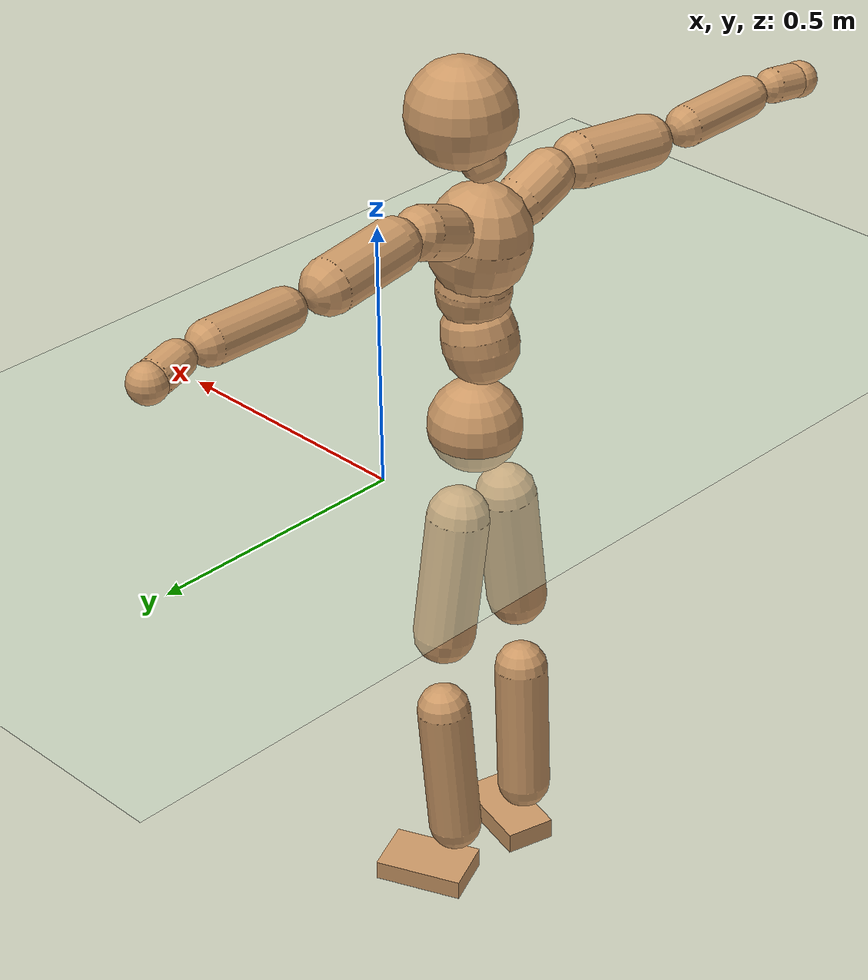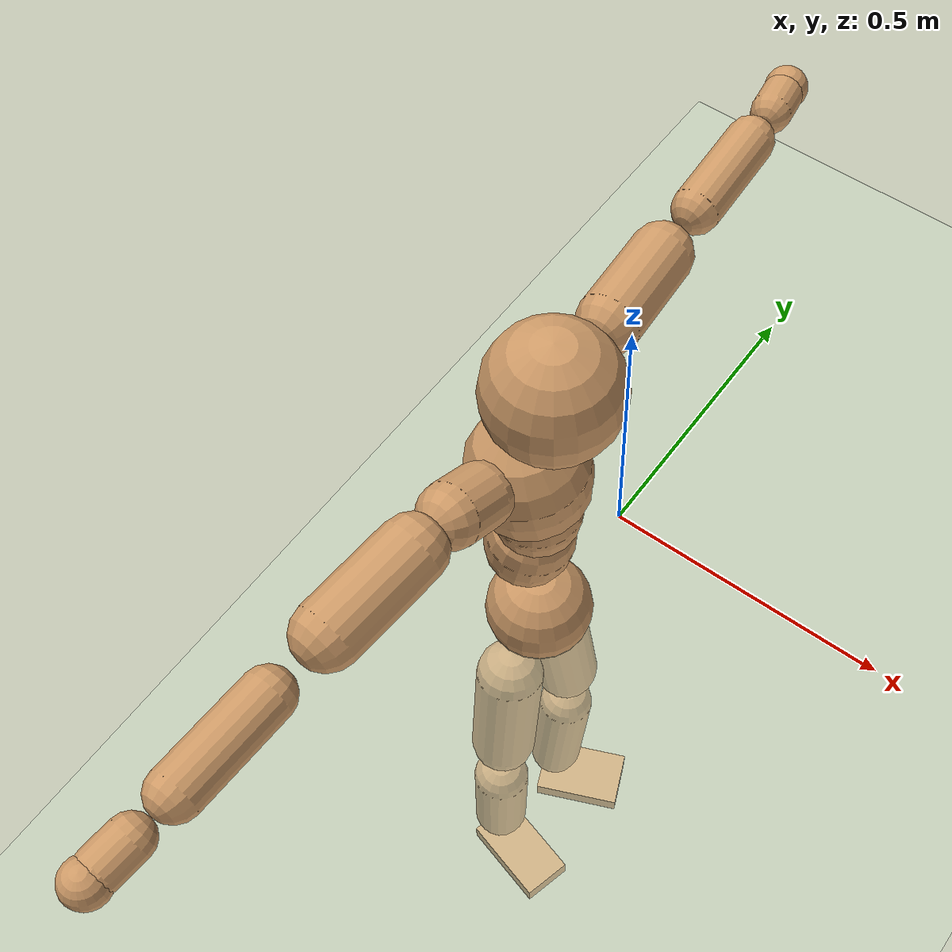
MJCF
<mujoco model="humanoid">
  <compiler coordinate="local"/>
  <default>
    <joint damping="0.0" armature="0.01" stiffness="0.0" limited="true"/>
    <geom conaffinity="1" condim="3" contype="7" margin="0.001" rgba="0.8 0.6 .4 1"/>
  </default>
  <asset>
    <texture type="skybox" builtin="gradient" rgb1=".4 .5 .6" rgb2="0 0 0" width="100" height="100"/>
    <texture builtin="flat" height="1278" mark="cross" markrgb="1 1 1" name="texgeom" random="0.01" rgb1="0.8 0.6 0.4" rgb2="0.8 0.6 0.4" type="cube" width="127"/>
    <texture builtin="checker" height="100" name="texplane" rgb1="0 0 0" rgb2="0.8 0.8 0.8" type="2d" width="100"/>
    <material name="MatPlane" reflectance="0.5" shininess="1" specular="1" texrepeat="60 60" texture="texplane"/>
    <material name="geom" texture="texgeom" texuniform="true"/>
  </asset>
  <worldbody>
    <light cutoff="100" diffuse="1 1 1" dir="-0 0 -1.3" directional="true" exponent="1" pos="0 0 1.3" specular=".1 .1 .1"/>
    <geom conaffinity="1" condim="3" name="floor" pos="0 0 0" rgba="0.8 0.9 0.8 1" size="100 100 .2" type="plane" material="MatPlane"/>
    <body name="Pelvis" pos="-0.0042 -0.2267 0.0215">
      <freejoint name="Pelvis"/>
      <geom type="sphere" contype="1" conaffinity="1" density="500" size="0.0889" pos="0.0000 0.0000 0.0000" name="Pelvis"/>
      <body name="L_Hip" pos="-0.0211 0.053 -0.0804">
        <joint name="L_Hip_x" type="hinge" pos="0 0 0" axis="1 0 0" stiffness="800" damping="80" armature="0.02" range="-180.0000 180.0000"/>
        <joint name="L_Hip_y" type="hinge" pos="0 0 0" axis="0 1 0" stiffness="800" damping="80" armature="0.02" range="-180.0000 180.0000"/>
        <joint name="L_Hip_z" type="hinge" pos="0 0 0" axis="0 0 1" stiffness="800" damping="80" armature="0.02" range="-180.0000 180.0000"/>
        <geom type="capsule" contype="1" conaffinity="1" density="500" fromto="0.0028 0.0102 -0.0829 0.0114 0.0409 -0.3317" size="0.0591" name="L_Hip"/>
        <body name="L_Knee" pos="0.0142 0.0511 -0.4147">
          <joint name="L_Knee_x" type="hinge" pos="0 0 0" axis="1 0 0" stiffness="800" damping="80" armature="0.02" range="-180.0000 180.0000"/>
          <joint name="L_Knee_y" type="hinge" pos="0 0 0" axis="0 1 0" stiffness="800" damping="80" armature="0.02" range="-180.0000 180.0000"/>
          <joint name="L_Knee_z" type="hinge" pos="0 0 0" axis="0 0 1" stiffness="800" damping="80" armature="0.02" range="-180.0000 180.0000"/>
          <geom type="capsule" contype="1" conaffinity="1" density="500" fromto="-0.0067 -0.0025 -0.0899 -0.0269 -0.0101 -0.3594" size="0.0517" name="L_Knee"/>
          <body name="L_Ankle" pos="-0.0336 -0.0127 -0.4493">
            <joint name="L_Ankle_x" type="hinge" pos="0 0 0" axis="1 0 0" stiffness="800" damping="80" armature="0.02" range="-180.0000 180.0000"/>
            <joint name="L_Ankle_y" type="hinge" pos="0 0 0" axis="0 1 0" stiffness="800" damping="80" armature="0.02" range="-180.0000 180.0000"/>
            <joint name="L_Ankle_z" type="hinge" pos="0 0 0" axis="0 0 1" stiffness="800" damping="80" armature="0.02" range="-180.0000 180.0000"/>
            <geom type="box" contype="1" conaffinity="1" density="500" pos="0.0603 0.0254 -0.0316" size="0.0873 0.0556 0.0197" quat="0.9802 0.0000 0.0000 0.1981" name="L_Ankle"/>
            <body name="L_Toe" pos="0.1206 0.0508 -0.0632">
              <joint name="L_Toe_x" type="hinge" pos="0 0 0" axis="1 0 0" stiffness="500" damping="50" armature="0.02" range="-180.0000 180.0000"/>
              <joint name="L_Toe_y" type="hinge" pos="0 0 0" axis="0 1 0" stiffness="500" damping="50" armature="0.02" range="-180.0000 180.0000"/>
              <joint name="L_Toe_z" type="hinge" pos="0 0 0" axis="0 0 1" stiffness="500" damping="50" armature="0.02" range="-180.0000 180.0000"/>
              <geom type="box" contype="1" conaffinity="1" density="500" pos="0.0000 0.0000 0.0330" size="0.001 0.0026 0.0011" quat="0.9794 0.0000 0.0000 0.2021" name="L_Toe"/>
            </body>
          </body>
        </body>
      </body>
      <body name="R_Hip" pos="-0.0176 -0.0538 -0.0886">
        <joint name="R_Hip_x" type="hinge" pos="0 0 0" axis="1 0 0" stiffness="800" damping="80" armature="0.02" range="-180.0000 180.0000"/>
        <joint name="R_Hip_y" type="hinge" pos="0 0 0" axis="0 1 0" stiffness="800" damping="80" armature="0.02" range="-180.0000 180.0000"/>
        <joint name="R_Hip_z" type="hinge" pos="0 0 0" axis="0 0 1" stiffness="800" damping="80" armature="0.02" range="-180.0000 180.0000"/>
        <geom type="capsule" contype="1" conaffinity="1" density="500" fromto="-0.0002 -0.0099 -0.0814 -0.0009 -0.0397 -0.3255" size="0.058" name="R_Hip"/>
        <body name="R_Knee" pos="-0.0012 -0.0497 -0.4069">
          <joint name="R_Knee_x" type="hinge" pos="0 0 0" axis="1 0 0" stiffness="800" damping="80" armature="0.02" range="-180.0000 180.0000"/>
          <joint name="R_Knee_y" type="hinge" pos="0 0 0" axis="0 1 0" stiffness="800" damping="80" armature="0.02" range="-180.0000 180.0000"/>
          <joint name="R_Knee_z" type="hinge" pos="0 0 0" axis="0 0 1" stiffness="800" damping="80" armature="0.02" range="-180.0000 180.0000"/>
          <geom type="capsule" contype="1" conaffinity="1" density="500" fromto="-0.0064 0.0036 -0.0882 -0.0256 0.0144 -0.3528" size="0.0522" name="R_Knee"/>
          <body name="R_Ankle" pos="-0.032 0.018 -0.441">
            <joint name="R_Ankle_x" type="hinge" pos="0 0 0" axis="1 0 0" stiffness="800" damping="80" armature="0.02" range="-180.0000 180.0000"/>
            <joint name="R_Ankle_y" type="hinge" pos="0 0 0" axis="0 1 0" stiffness="800" damping="80" armature="0.02" range="-180.0000 180.0000"/>
            <joint name="R_Ankle_z" type="hinge" pos="0 0 0" axis="0 0 1" stiffness="800" damping="80" armature="0.02" range="-180.0000 180.0000"/>
            <geom type="box" contype="1" conaffinity="1" density="500" pos="0.0652 -0.0176 -0.0319" size="0.092 0.0491 0.0213" quat="0.9913 0.0000 0.0000 -0.1317" name="R_Ankle"/>
            <body name="R_Toe" pos="0.1304 -0.0353 -0.0637">
              <joint name="R_Toe_x" type="hinge" pos="0 0 0" axis="1 0 0" stiffness="500" damping="50" armature="0.02" range="-180.0000 180.0000"/>
              <joint name="R_Toe_y" type="hinge" pos="0 0 0" axis="0 1 0" stiffness="500" damping="50" armature="0.02" range="-180.0000 180.0000"/>
              <joint name="R_Toe_z" type="hinge" pos="0 0 0" axis="0 0 1" stiffness="500" damping="50" armature="0.02" range="-180.0000 180.0000"/>
              <geom type="box" contype="1" conaffinity="1" density="500" pos="0.0000 0.0000 0.0325" size="0.0009 0.0024 0.0011" quat="0.9924 0.0000 0.0000 -0.1228" name="R_Toe"/>
            </body>
          </body>
        </body>
      </body>
      <body name="Torso" pos="-0.0338 0.0046 0.1201">
        <joint name="Torso_x" type="hinge" pos="0 0 0" axis="1 0 0" stiffness="1000" damping="100" armature="0.02" range="-180.0000 180.0000"/>
        <joint name="Torso_y" type="hinge" pos="0 0 0" axis="0 1 0" stiffness="1000" damping="100" armature="0.02" range="-180.0000 180.0000"/>
        <joint name="Torso_z" type="hinge" pos="0 0 0" axis="0 0 1" stiffness="1000" damping="100" armature="0.02" range="-180.0000 180.0000"/>
        <geom type="capsule" contype="1" conaffinity="1" density="500" fromto="0.0160 0.0027 0.0826 0.0107 0.0018 0.0551" size="0.0705" name="Torso"/>
        <body name="Spine" pos="0.0267 0.0045 0.1377">
          <joint name="Spine_x" type="hinge" pos="0 0 0" axis="1 0 0" stiffness="1000" damping="100" armature="0.02" range="-180.0000 180.0000"/>
          <joint name="Spine_y" type="hinge" pos="0 0 0" axis="0 1 0" stiffness="1000" damping="100" armature="0.02" range="-180.0000 180.0000"/>
          <joint name="Spine_z" type="hinge" pos="0 0 0" axis="0 0 1" stiffness="1000" damping="100" armature="0.02" range="-180.0000 180.0000"/>
          <geom type="capsule" contype="1" conaffinity="1" density="500" fromto="-0.0002 -0.0009 0.0333 -0.0001 -0.0006 0.0222" size="0.0698" name="Spine"/>
          <body name="Chest" pos="-0.0003 -0.0015 0.0555">
            <joint name="Chest_x" type="hinge" pos="0 0 0" axis="1 0 0" stiffness="1000" damping="100" armature="0.02" range="-180.0000 180.0000"/>
            <joint name="Chest_y" type="hinge" pos="0 0 0" axis="0 1 0" stiffness="1000" damping="100" armature="0.02" range="-180.0000 180.0000"/>
            <joint name="Chest_z" type="hinge" pos="0 0 0" axis="0 0 1" stiffness="1000" damping="100" armature="0.02" range="-180.0000 180.0000"/>
            <geom type="capsule" contype="1" conaffinity="1" density="500" fromto="-0.0120 -0.0045 0.0840 -0.0080 -0.0030 0.0560" size="0.0931" name="Chest"/>
            <body name="Neck" pos="-0.0209 -0.0124 0.2031">
              <joint name="Neck_x" type="hinge" pos="0 0 0" axis="1 0 0" stiffness="500" damping="50" armature="0.02" range="-180.0000 180.0000"/>
              <joint name="Neck_y" type="hinge" pos="0 0 0" axis="0 1 0" stiffness="500" damping="50" armature="0.02" range="-180.0000 180.0000"/>
              <joint name="Neck_z" type="hinge" pos="0 0 0" axis="0 0 1" stiffness="500" damping="50" armature="0.02" range="-180.0000 180.0000"/>
              <geom type="capsule" contype="1" conaffinity="1" density="500" fromto="0.0106 0.0022 0.0187 0.0422 0.0086 0.0748" size="0.0426" name="Neck"/>
              <body name="Head" pos="0.0528 0.0108 0.0936">
                <joint name="Head_x" type="hinge" pos="0 0 0" axis="1 0 0" stiffness="500" damping="50" armature="0.02" range="-180.0000 180.0000"/>
                <joint name="Head_y" type="hinge" pos="0 0 0" axis="0 1 0" stiffness="500" damping="50" armature="0.02" range="-180.0000 180.0000"/>
                <joint name="Head_z" type="hinge" pos="0 0 0" axis="0 0 1" stiffness="500" damping="50" armature="0.02" range="-180.0000 180.0000"/>
                <geom type="sphere" contype="1" conaffinity="1" density="500" size="0.1002" pos="0.0000 0.0000 0.0000" name="Head"/>
              </body>
            </body>
            <body name="L_Thorax" pos="-0.0173 0.0655 0.1096">
              <joint name="L_Thorax_x" type="hinge" pos="0 0 0" axis="1 0 0" stiffness="500" damping="50" armature="0.02" range="-180.0000 180.0000"/>
              <joint name="L_Thorax_y" type="hinge" pos="0 0 0" axis="0 1 0" stiffness="500" damping="50" armature="0.02" range="-180.0000 180.0000"/>
              <joint name="L_Thorax_z" type="hinge" pos="0 0 0" axis="0 0 1" stiffness="500" damping="50" armature="0.02" range="-180.0000 180.0000"/>
              <geom type="capsule" contype="1" conaffinity="1" density="500" fromto="-0.0027 0.0223 0.0092 -0.0108 0.0893 0.0370" size="0.0491" name="L_Thorax"/>
              <body name="L_Shoulder" pos="-0.0135 0.1116 0.0462">
                <joint name="L_Shoulder_x" type="hinge" pos="0 0 0" axis="1 0 0" stiffness="500" damping="50" armature="0.02" range="-720.0000 720.0000"/>
                <joint name="L_Shoulder_y" type="hinge" pos="0 0 0" axis="0 1 0" stiffness="500" damping="50" armature="0.02" range="-720.0000 720.0000"/>
                <joint name="L_Shoulder_z" type="hinge" pos="0 0 0" axis="0 0 1" stiffness="500" damping="50" armature="0.02" range="-720.0000 720.0000"/>
                <geom type="capsule" contype="1" conaffinity="1" density="500" fromto="-0.0043 0.0521 -0.0036 -0.0173 0.2085 -0.0145" size="0.0506" name="L_Shoulder"/>
                <body name="L_Elbow" pos="-0.0216 0.2606 -0.0181">
                  <joint name="L_Elbow_x" type="hinge" pos="0 0 0" axis="1 0 0" stiffness="500" damping="50" armature="0.02" range="-720.0000 720.0000"/>
                  <joint name="L_Elbow_y" type="hinge" pos="0 0 0" axis="0 1 0" stiffness="500" damping="50" armature="0.02" range="-720.0000 720.0000"/>
                  <joint name="L_Elbow_z" type="hinge" pos="0 0 0" axis="0 0 1" stiffness="500" damping="50" armature="0.02" range="-720.0000 720.0000"/>
                  <geom type="capsule" contype="1" conaffinity="1" density="500" fromto="-0.0018 0.0540 0.0026 -0.0074 0.2160 0.0103" size="0.0393" name="L_Elbow"/>
                  <body name="L_Wrist" pos="-0.0092 0.27 0.0129">
                    <joint name="L_Wrist_x" type="hinge" pos="0 0 0" axis="1 0 0" stiffness="300" damping="30" armature="0.02" range="-180.0000 180.0000"/>
                    <joint name="L_Wrist_y" type="hinge" pos="0 0 0" axis="0 1 0" stiffness="300" damping="30" armature="0.02" range="-180.0000 180.0000"/>
                    <joint name="L_Wrist_z" type="hinge" pos="0 0 0" axis="0 0 1" stiffness="300" damping="30" armature="0.02" range="-180.0000 180.0000"/>
                    <geom type="capsule" contype="1" conaffinity="1" density="500" fromto="-0.0032 0.0172 -0.0021 -0.0126 0.0687 -0.0084" size="0.0333" name="L_Wrist"/>
                    <body name="L_Hand" pos="-0.0158 0.0859 -0.0105">
                      <joint name="L_Hand_x" type="hinge" pos="0 0 0" axis="1 0 0" stiffness="300" damping="30" armature="0.02" range="-180.0000 180.0000"/>
                      <joint name="L_Hand_y" type="hinge" pos="0 0 0" axis="0 1 0" stiffness="300" damping="30" armature="0.02" range="-180.0000 180.0000"/>
                      <joint name="L_Hand_z" type="hinge" pos="0 0 0" axis="0 0 1" stiffness="300" damping="30" armature="0.02" range="-180.0000 180.0000"/>
                      <geom type="sphere" contype="1" conaffinity="1" density="500" size="0.0351" pos="0.0000 0.0000 0.0000" name="L_Hand"/>
                    </body>
                  </body>
                </body>
              </body>
            </body>
            <body name="R_Thorax" pos="-0.022 -0.0757 0.1074">
              <joint name="R_Thorax_x" type="hinge" pos="0 0 0" axis="1 0 0" stiffness="500" damping="50" armature="0.02" range="-180.0000 180.0000"/>
              <joint name="R_Thorax_y" type="hinge" pos="0 0 0" axis="0 1 0" stiffness="500" damping="50" armature="0.02" range="-180.0000 180.0000"/>
              <joint name="R_Thorax_z" type="hinge" pos="0 0 0" axis="0 0 1" stiffness="500" damping="50" armature="0.02" range="-180.0000 180.0000"/>
              <geom type="capsule" contype="1" conaffinity="1" density="500" fromto="-0.0009 -0.0206 0.0094 -0.0037 -0.0823 0.0374" size="0.0494" name="R_Thorax"/>
              <body name="R_Shoulder" pos="-0.0046 -0.1028 0.0468">
                <joint name="R_Shoulder_x" type="hinge" pos="0 0 0" axis="1 0 0" stiffness="500" damping="50" armature="0.02" range="-720.0000 720.0000"/>
                <joint name="R_Shoulder_y" type="hinge" pos="0 0 0" axis="0 1 0" stiffness="500" damping="50" armature="0.02" range="-720.0000 720.0000"/>
                <joint name="R_Shoulder_z" type="hinge" pos="0 0 0" axis="0 0 1" stiffness="500" damping="50" armature="0.02" range="-720.0000 720.0000"/>
                <geom type="capsule" contype="1" conaffinity="1" density="500" fromto="-0.0056 -0.0525 -0.0040 -0.0222 -0.2100 -0.0160" size="0.0513" name="R_Shoulder"/>
                <body name="R_Elbow" pos="-0.0278 -0.2624 -0.02">
                  <joint name="R_Elbow_x" type="hinge" pos="0 0 0" axis="1 0 0" stiffness="500" damping="50" armature="0.02" range="-720.0000 720.0000"/>
                  <joint name="R_Elbow_y" type="hinge" pos="0 0 0" axis="0 1 0" stiffness="500" damping="50" armature="0.02" range="-720.0000 720.0000"/>
                  <joint name="R_Elbow_z" type="hinge" pos="0 0 0" axis="0 0 1" stiffness="500" damping="50" armature="0.02" range="-720.0000 720.0000"/>
                  <geom type="capsule" contype="1" conaffinity="1" density="500" fromto="-0.0013 -0.0550 0.0020 -0.0053 -0.2202 0.0081" size="0.0395" name="R_Elbow"/>
                  <body name="R_Wrist" pos="-0.0067 -0.2752 0.0101">
                    <joint name="R_Wrist_x" type="hinge" pos="0 0 0" axis="1 0 0" stiffness="300" damping="30" armature="0.02" range="-180.0000 180.0000"/>
                    <joint name="R_Wrist_y" type="hinge" pos="0 0 0" axis="0 1 0" stiffness="300" damping="30" armature="0.02" range="-180.0000 180.0000"/>
                    <joint name="R_Wrist_z" type="hinge" pos="0 0 0" axis="0 0 1" stiffness="300" damping="30" armature="0.02" range="-180.0000 180.0000"/>
                    <geom type="capsule" contype="1" conaffinity="1" density="500" fromto="-0.0021 -0.0174 -0.0017 -0.0083 -0.0694 -0.0066" size="0.0333" name="R_Wrist"/>
                    <body name="R_Hand" pos="-0.0104 -0.0868 -0.0083">
                      <joint name="R_Hand_x" type="hinge" pos="0 0 0" axis="1 0 0" stiffness="300" damping="30" armature="0.02" range="-180.0000 180.0000"/>
                      <joint name="R_Hand_y" type="hinge" pos="0 0 0" axis="0 1 0" stiffness="300" damping="30" armature="0.02" range="-180.0000 180.0000"/>
                      <joint name="R_Hand_z" type="hinge" pos="0 0 0" axis="0 0 1" stiffness="300" damping="30" armature="0.02" range="-180.0000 180.0000"/>
                      <geom type="sphere" contype="1" conaffinity="1" density="500" size="0.0351" pos="0.0000 0.0000 0.0000" name="R_Hand"/>
                    </body>
                  </body>
                </body>
              </body>
            </body>
          </body>
        </body>
      </body>
    </body>
  </worldbody>
  <actuator>
    <motor name="L_Hip_x" joint="L_Hip_x" gear="500"/>
    <motor name="L_Hip_y" joint="L_Hip_y" gear="500"/>
    <motor name="L_Hip_z" joint="L_Hip_z" gear="500"/>
    <motor name="L_Knee_x" joint="L_Knee_x" gear="500"/>
    <motor name="L_Knee_y" joint="L_Knee_y" gear="500"/>
    <motor name="L_Knee_z" joint="L_Knee_z" gear="500"/>
    <motor name="L_Ankle_x" joint="L_Ankle_x" gear="500"/>
    <motor name="L_Ankle_y" joint="L_Ankle_y" gear="500"/>
    <motor name="L_Ankle_z" joint="L_Ankle_z" gear="500"/>
    <motor name="L_Toe_x" joint="L_Toe_x" gear="500"/>
    <motor name="L_Toe_y" joint="L_Toe_y" gear="500"/>
    <motor name="L_Toe_z" joint="L_Toe_z" gear="500"/>
    <motor name="R_Hip_x" joint="R_Hip_x" gear="500"/>
    <motor name="R_Hip_y" joint="R_Hip_y" gear="500"/>
    <motor name="R_Hip_z" joint="R_Hip_z" gear="500"/>
    <motor name="R_Knee_x" joint="R_Knee_x" gear="500"/>
    <motor name="R_Knee_y" joint="R_Knee_y" gear="500"/>
    <motor name="R_Knee_z" joint="R_Knee_z" gear="500"/>
    <motor name="R_Ankle_x" joint="R_Ankle_x" gear="500"/>
    <motor name="R_Ankle_y" joint="R_Ankle_y" gear="500"/>
    <motor name="R_Ankle_z" joint="R_Ankle_z" gear="500"/>
    <motor name="R_Toe_x" joint="R_Toe_x" gear="500"/>
    <motor name="R_Toe_y" joint="R_Toe_y" gear="500"/>
    <motor name="R_Toe_z" joint="R_Toe_z" gear="500"/>
    <motor name="Torso_x" joint="Torso_x" gear="500"/>
    <motor name="Torso_y" joint="Torso_y" gear="500"/>
    <motor name="Torso_z" joint="Torso_z" gear="500"/>
    <motor name="Spine_x" joint="Spine_x" gear="500"/>
    <motor name="Spine_y" joint="Spine_y" gear="500"/>
    <motor name="Spine_z" joint="Spine_z" gear="500"/>
    <motor name="Chest_x" joint="Chest_x" gear="500"/>
    <motor name="Chest_y" joint="Chest_y" gear="500"/>
    <motor name="Chest_z" joint="Chest_z" gear="500"/>
    <motor name="Neck_x" joint="Neck_x" gear="500"/>
    <motor name="Neck_y" joint="Neck_y" gear="500"/>
    <motor name="Neck_z" joint="Neck_z" gear="500"/>
    <motor name="Head_x" joint="Head_x" gear="500"/>
    <motor name="Head_y" joint="Head_y" gear="500"/>
    <motor name="Head_z" joint="Head_z" gear="500"/>
    <motor name="L_Thorax_x" joint="L_Thorax_x" gear="500"/>
    <motor name="L_Thorax_y" joint="L_Thorax_y" gear="500"/>
    <motor name="L_Thorax_z" joint="L_Thorax_z" gear="500"/>
    <motor name="L_Shoulder_x" joint="L_Shoulder_x" gear="500"/>
    <motor name="L_Shoulder_y" joint="L_Shoulder_y" gear="500"/>
    <motor name="L_Shoulder_z" joint="L_Shoulder_z" gear="500"/>
    <motor name="L_Elbow_x" joint="L_Elbow_x" gear="500"/>
    <motor name="L_Elbow_y" joint="L_Elbow_y" gear="500"/>
    <motor name="L_Elbow_z" joint="L_Elbow_z" gear="500"/>
    <motor name="L_Wrist_x" joint="L_Wrist_x" gear="500"/>
    <motor name="L_Wrist_y" joint="L_Wrist_y" gear="500"/>
    <motor name="L_Wrist_z" joint="L_Wrist_z" gear="500"/>
    <motor name="L_Hand_x" joint="L_Hand_x" gear="500"/>
    <motor name="L_Hand_y" joint="L_Hand_y" gear="500"/>
    <motor name="L_Hand_z" joint="L_Hand_z" gear="500"/>
    <motor name="R_Thorax_x" joint="R_Thorax_x" gear="500"/>
    <motor name="R_Thorax_y" joint="R_Thorax_y" gear="500"/>
    <motor name="R_Thorax_z" joint="R_Thorax_z" gear="500"/>
    <motor name="R_Shoulder_x" joint="R_Shoulder_x" gear="500"/>
    <motor name="R_Shoulder_y" joint="R_Shoulder_y" gear="500"/>
    <motor name="R_Shoulder_z" joint="R_Shoulder_z" gear="500"/>
    <motor name="R_Elbow_x" joint="R_Elbow_x" gear="500"/>
    <motor name="R_Elbow_y" joint="R_Elbow_y" gear="500"/>
    <motor name="R_Elbow_z" joint="R_Elbow_z" gear="500"/>
    <motor name="R_Wrist_x" joint="R_Wrist_x" gear="500"/>
    <motor name="R_Wrist_y" joint="R_Wrist_y" gear="500"/>
    <motor name="R_Wrist_z" joint="R_Wrist_z" gear="500"/>
    <motor name="R_Hand_x" joint="R_Hand_x" gear="500"/>
    <motor name="R_Hand_y" joint="R_Hand_y" gear="500"/>
    <motor name="R_Hand_z" joint="R_Hand_z" gear="500"/>
  </actuator>
  <contact>
    <exclude body1="Torso" body2="Chest"/>
    <exclude body1="Head" body2="Chest"/>
    <exclude body1="R_Knee" body2="R_Toe"/>
    <exclude body1="R_Knee" body2="L_Ankle"/>
    <exclude body1="R_Knee" body2="L_Toe"/>
    <exclude body1="L_Knee" body2="L_Toe"/>
    <exclude body1="L_Knee" body2="R_Ankle"/>
    <exclude body1="L_Knee" body2="R_Toe"/>
    <exclude body1="L_Shoulder" body2="Chest"/>
    <exclude body1="R_Shoulder" body2="Chest"/>
  </contact>
  <sensor/>
  <size njmax="700" nconmax="700"/>
</mujoco>
